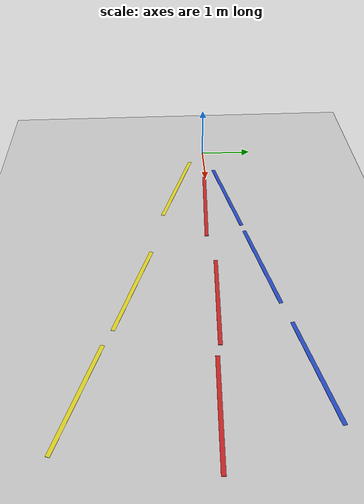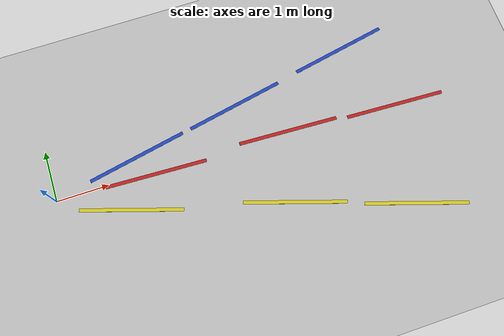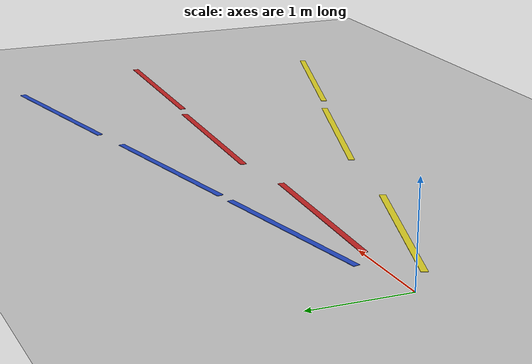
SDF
<sdf version="1.7">
 <world name="racecar_3_line_2">
  <light name="sun" type="directional">
   <pose>0 0 10 0 -0 0</pose>
   <diffuse>0.8 0.8 0.8 1</diffuse>
   <specular>0.2 0.2 0.2 1</specular>
   <attenuation>
    <range>1000</range>
    <constant>0.9</constant>
    <linear>0.01</linear>
    <quadratic>0.001</quadratic>
   </attenuation>
   <direction>-0.5 0.1 -0.9</direction>
   <spot><inner_angle>0</inner_angle><outer_angle>0</outer_angle><falloff>0</falloff></spot>
  </light>
  <model name="ground_plane">
   <static>1</static>
   <link name="link">
    <collision name="collision">
     <geometry><plane><normal>0 0 1</normal><size>100 100</size></plane></geometry>
     <surface><friction><ode><mu>100</mu><mu2>50</mu2></ode></friction></surface>
    </collision>
    <visual name="visual">
     <cast_shadows>0</cast_shadows>
     <geometry><plane><normal>0 0 1</normal><size>100 100</size></plane></geometry>
     <material>
      <script><uri>file://media/materials/scripts/gazebo.material</uri><name>Gazebo/Grey</name></script>
     </material>
    </visual>
   </link>
  </model>
  <gravity>0 0 -9.8</gravity>
  <magnetic_field>6e-06 2.3e-05 -4.2e-05</magnetic_field>
  <atmosphere type="adiabatic"/>
  <physics type="ode">
   <max_step_size>0.001</max_step_size>
   <real_time_factor>1</real_time_factor>
   <real_time_update_rate>1000</real_time_update_rate>
  </physics>
  <scene><ambient>0.4 0.4 0.4 1</ambient><background>0.7 0.7 0.7 1</background><shadows>1</shadows></scene>
  <spherical_coordinates>
   <surface_model>EARTH_WGS84</surface_model>
   <latitude_deg>0</latitude_deg>
   <longitude_deg>0</longitude_deg>
   <elevation>0</elevation>
   <heading_deg>0</heading_deg>
  </spherical_coordinates>
  <model name="straightRoad_v2">
   <link name="link">
    <inertial>
     <mass>0.00065387</mass>
     <inertia>
      <ixx>2.4e-07</ixx>
      <ixy>0</ixy>
      <ixz>0</ixz>
      <iyy>0.00020698</iyy>
      <iyz>0</iyz>
      <izz>0.00020722</izz>
     </inertia>
    </inertial>
    <pose>0.753077 -1.50125 6e-06 0 0 -0.309556</pose>
    <visual name="visual">
     <geometry><box><size>1.94898 0.066283 0.005062</size></box></geometry>
     <material>
      <script><name>Gazebo/Yellow</name><uri>file://media/materials/scripts/gazebo.material</uri></script>
      <shader type="pixel"><normal_map>__default__</normal_map></shader>
      <ambient>1 1 0 1</ambient>
      <diffuse>1 1 0 1</diffuse>
      <emissive>0 0 0 1</emissive>
     </material>
    </visual>
    <collision name="collision">
     <geometry><box><size>1.94898 0.066283 0.005062</size></box></geometry>
     <surface>
      <friction>
       <ode><mu>1</mu><mu2>1</mu2><fdir1>0 0 0</fdir1><slip1>0</slip1><slip2>0</slip2></ode>
       <torsional>
        <coefficient>1</coefficient>
        <patch_radius>0</patch_radius>
        <surface_radius>0</surface_radius>
        <use_patch_radius>1</use_patch_radius>
        <ode><slip>0</slip></ode>
       </torsional>
      </friction>
      <bounce><restitution_coefficient>0</restitution_coefficient><threshold>1e+06</threshold></bounce>
      <contact>
       <collide_without_contact>0</collide_without_contact>
       <collide_without_contact_bitmask>1</collide_without_contact_bitmask>
       <collide_bitmask>1</collide_bitmask>
       <ode>
        <soft_cfm>0</soft_cfm>
        <soft_erp>0.2</soft_erp>
        <kp>1e+13</kp>
        <kd>1</kd>
        <max_vel>0.01</max_vel>
        <min_depth>0</min_depth>
       </ode>
       <bullet>
        <split_impulse>1</split_impulse>
        <split_impulse_penetration_threshold>-0.01</split_impulse_penetration_threshold>
        <soft_cfm>0</soft_cfm>
        <soft_erp>0.2</soft_erp>
        <kp>1e+13</kp>
        <kd>1</kd>
       </bullet>
      </contact>
     </surface>
    </collision>
   </link>
   <link name="link_clone">
    <inertial>
     <mass>0.00065387</mass>
     <inertia>
      <ixx>2.4e-07</ixx>
      <ixy>0</ixy>
      <ixz>0</ixz>
      <iyy>0.00020698</iyy>
      <iyz>0</iyz>
      <izz>0.00020722</izz>
     </inertia>
    </inertial>
    <pose>1.38092 -0.98085 1.6e-05 -1e-05 -1e-06 -0.042499</pose>
    <visual name="visual">
     <geometry><box><size>1.94898 0.066283 0.005062</size></box></geometry>
     <material>
      <script><name>Gazebo/Red</name><uri>file://media/materials/scripts/gazebo.material</uri></script>
      <shader type="pixel"><normal_map>__default__</normal_map></shader>
      <ambient>1 0 0 1</ambient>
      <diffuse>1 0 0 1</diffuse>
      <emissive>1 0 0 1</emissive>
      <specular>1 0 0 1</specular>
     </material>
    </visual>
    <collision name="collision">
     <geometry><box><size>1.94898 0.066283 0.005062</size></box></geometry>
     <surface>
      <friction>
       <ode><mu>1</mu><mu2>1</mu2><fdir1>0 0 0</fdir1><slip1>0</slip1><slip2>0</slip2></ode>
       <torsional>
        <coefficient>1</coefficient>
        <patch_radius>0</patch_radius>
        <surface_radius>0</surface_radius>
        <use_patch_radius>1</use_patch_radius>
        <ode><slip>0</slip></ode>
       </torsional>
      </friction>
      <bounce><restitution_coefficient>0</restitution_coefficient><threshold>1e+06</threshold></bounce>
      <contact>
       <collide_without_contact>0</collide_without_contact>
       <collide_without_contact_bitmask>1</collide_without_contact_bitmask>
       <collide_bitmask>1</collide_bitmask>
       <ode>
        <soft_cfm>0</soft_cfm>
        <soft_erp>0.2</soft_erp>
        <kp>1e+13</kp>
        <kd>1</kd>
        <max_vel>0.01</max_vel>
        <min_depth>0</min_depth>
       </ode>
       <bullet>
        <split_impulse>1</split_impulse>
        <split_impulse_penetration_threshold>-0.01</split_impulse_penetration_threshold>
        <soft_cfm>0</soft_cfm>
        <soft_erp>0.2</soft_erp>
        <kp>1e+13</kp>
        <kd>1</kd>
       </bullet>
      </contact>
     </surface>
    </collision>
   </link>
   <link name="link_clone_0">
    <inertial>
     <mass>0.00065387</mass>
     <inertia>
      <ixx>2.4e-07</ixx>
      <ixy>0</ixy>
      <ixz>0</ixz>
      <iyy>0.00020698</iyy>
      <iyz>0</iyz>
      <izz>0.00020722</izz>
     </inertia>
    </inertial>
    <pose>3.68808 -2.31402 2.9e-05 -1e-05 -3e-06 -0.309556</pose>
    <visual name="visual">
     <geometry><box><size>1.94898 0.066283 0.005062</size></box></geometry>
     <material>
      <script><name>Gazebo/Yellow</name><uri>file://media/materials/scripts/gazebo.material</uri></script>
      <shader type="pixel"><normal_map>__default__</normal_map></shader>
      <ambient>1 1 0 1</ambient>
      <diffuse>1 1 0 1</diffuse>
      <emissive>0 0 0 1</emissive>
     </material>
    </visual>
    <collision name="collision">
     <geometry><box><size>1.94898 0.066283 0.005062</size></box></geometry>
     <surface>
      <friction>
       <ode><mu>1</mu><mu2>1</mu2><fdir1>0 0 0</fdir1><slip1>0</slip1><slip2>0</slip2></ode>
       <torsional>
        <coefficient>1</coefficient>
        <patch_radius>0</patch_radius>
        <surface_radius>0</surface_radius>
        <use_patch_radius>1</use_patch_radius>
        <ode><slip>0</slip></ode>
       </torsional>
      </friction>
      <bounce><restitution_coefficient>0</restitution_coefficient><threshold>1e+06</threshold></bounce>
      <contact>
       <collide_without_contact>0</collide_without_contact>
       <collide_without_contact_bitmask>1</collide_without_contact_bitmask>
       <collide_bitmask>1</collide_bitmask>
       <ode>
        <soft_cfm>0</soft_cfm>
        <soft_erp>0.2</soft_erp>
        <kp>1e+13</kp>
        <kd>1</kd>
        <max_vel>0.01</max_vel>
        <min_depth>0</min_depth>
       </ode>
       <bullet>
        <split_impulse>1</split_impulse>
        <split_impulse_penetration_threshold>-0.01</split_impulse_penetration_threshold>
        <soft_cfm>0</soft_cfm>
        <soft_erp>0.2</soft_erp>
        <kp>1e+13</kp>
        <kd>1</kd>
       </bullet>
      </contact>
     </surface>
    </collision>
   </link>
   <link name="link_clone_1">
    <inertial>
     <mass>0.00065387</mass>
     <inertia>
      <ixx>2.4e-07</ixx>
      <ixy>0</ixy>
      <ixz>0</ixz>
      <iyy>0.00020698</iyy>
      <iyz>0</iyz>
      <izz>0.00020722</izz>
     </inertia>
    </inertial>
    <pose>5.83844 -3.04214 3.7e-05 -1e-05 -3e-06 -0.309556</pose>
    <visual name="visual">
     <geometry><box><size>1.94898 0.066283 0.005062</size></box></geometry>
     <material>
      <script><name>Gazebo/Yellow</name><uri>file://media/materials/scripts/gazebo.material</uri></script>
      <shader type="pixel"><normal_map>__default__</normal_map></shader>
      <ambient>1 1 0 1</ambient>
      <diffuse>1 1 0 1</diffuse>
      <emissive>0 0 0 1</emissive>
     </material>
    </visual>
    <collision name="collision">
     <geometry><box><size>1.94898 0.066283 0.005062</size></box></geometry>
     <surface>
      <friction>
       <ode><mu>1</mu><mu2>1</mu2><fdir1>0 0 0</fdir1><slip1>0</slip1><slip2>0</slip2></ode>
       <torsional>
        <coefficient>1</coefficient>
        <patch_radius>0</patch_radius>
        <surface_radius>0</surface_radius>
        <use_patch_radius>1</use_patch_radius>
        <ode><slip>0</slip></ode>
       </torsional>
      </friction>
      <bounce><restitution_coefficient>0</restitution_coefficient><threshold>1e+06</threshold></bounce>
      <contact>
       <collide_without_contact>0</collide_without_contact>
       <collide_without_contact_bitmask>1</collide_without_contact_bitmask>
       <collide_bitmask>1</collide_bitmask>
       <ode>
        <soft_cfm>0</soft_cfm>
        <soft_erp>0.2</soft_erp>
        <kp>1e+13</kp>
        <kd>1</kd>
        <max_vel>0.01</max_vel>
        <min_depth>0</min_depth>
       </ode>
       <bullet>
        <split_impulse>1</split_impulse>
        <split_impulse_penetration_threshold>-0.01</split_impulse_penetration_threshold>
        <soft_cfm>0</soft_cfm>
        <soft_erp>0.2</soft_erp>
        <kp>1e+13</kp>
        <kd>1</kd>
       </bullet>
      </contact>
     </surface>
    </collision>
   </link>
   <link name="link_clone_clone">
    <inertial>
     <mass>0.00065387</mass>
     <inertia>
      <ixx>2.4e-07</ixx>
      <ixy>0</ixy>
      <ixz>0</ixz>
      <iyy>0.00020698</iyy>
      <iyz>0</iyz>
      <izz>0.00020722</izz>
     </inertia>
    </inertial>
    <pose>1.11861 -0.548944 1.9e-05 -2e-05 3e-06 0.195199</pose>
    <visual name="visual">
     <geometry><box><size>1.94898 0.066283 0.005062</size></box></geometry>
     <material>
      <script><name>Gazebo/Blue</name><uri>file://media/materials/scripts/gazebo.material</uri></script>
      <shader type="pixel"><normal_map>__default__</normal_map></shader>
      <ambient>0 0 1 1</ambient>
      <diffuse>0 0 1 1</diffuse>
      <emissive>0 0 1 1</emissive>
      <specular>0 0 1 1</specular>
     </material>
    </visual>
    <collision name="collision">
     <geometry><box><size>1.94898 0.066283 0.005062</size></box></geometry>
     <surface>
      <friction>
       <ode><mu>1</mu><mu2>1</mu2><fdir1>0 0 0</fdir1><slip1>0</slip1><slip2>0</slip2></ode>
       <torsional>
        <coefficient>1</coefficient>
        <patch_radius>0</patch_radius>
        <surface_radius>0</surface_radius>
        <use_patch_radius>1</use_patch_radius>
        <ode><slip>0</slip></ode>
       </torsional>
      </friction>
      <bounce><restitution_coefficient>0</restitution_coefficient><threshold>1e+06</threshold></bounce>
      <contact>
       <collide_without_contact>0</collide_without_contact>
       <collide_without_contact_bitmask>1</collide_without_contact_bitmask>
       <collide_bitmask>1</collide_bitmask>
       <ode>
        <soft_cfm>0</soft_cfm>
        <soft_erp>0.2</soft_erp>
        <kp>1e+13</kp>
        <kd>1</kd>
        <max_vel>0.01</max_vel>
        <min_depth>0</min_depth>
       </ode>
       <bullet>
        <split_impulse>1</split_impulse>
        <split_impulse_penetration_threshold>-0.01</split_impulse_penetration_threshold>
        <soft_cfm>0</soft_cfm>
        <soft_erp>0.2</soft_erp>
        <kp>1e+13</kp>
        <kd>1</kd>
       </bullet>
      </contact>
     </surface>
    </collision>
   </link>
   <link name="link_clone_clone_0">
    <inertial>
     <mass>0.00065387</mass>
     <inertia>
      <ixx>2.4e-07</ixx>
      <ixy>0</ixy>
      <ixz>0</ixz>
      <iyy>0.00020698</iyy>
      <iyz>0</iyz>
      <izz>0.00020722</izz>
     </inertia>
    </inertial>
    <pose>4.02415 -0.955065 2.4e-05 -2e-05 -1e-06 -0.042499</pose>
    <visual name="visual">
     <geometry><box><size>1.94898 0.066283 0.005062</size></box></geometry>
     <material>
      <script><name>Gazebo/Red</name><uri>file://media/materials/scripts/gazebo.material</uri></script>
      <shader type="pixel"><normal_map>__default__</normal_map></shader>
      <ambient>1 0 0 1</ambient>
      <diffuse>1 0 0 1</diffuse>
      <emissive>1 0 0 1</emissive>
      <specular>1 0 0 1</specular>
     </material>
    </visual>
    <collision name="collision">
     <geometry><box><size>1.94898 0.066283 0.005062</size></box></geometry>
     <surface>
      <friction>
       <ode><mu>1</mu><mu2>1</mu2><fdir1>0 0 0</fdir1><slip1>0</slip1><slip2>0</slip2></ode>
       <torsional>
        <coefficient>1</coefficient>
        <patch_radius>0</patch_radius>
        <surface_radius>0</surface_radius>
        <use_patch_radius>1</use_patch_radius>
        <ode><slip>0</slip></ode>
       </torsional>
      </friction>
      <bounce><restitution_coefficient>0</restitution_coefficient><threshold>1e+06</threshold></bounce>
      <contact>
       <collide_without_contact>0</collide_without_contact>
       <collide_without_contact_bitmask>1</collide_without_contact_bitmask>
       <collide_bitmask>1</collide_bitmask>
       <ode>
        <soft_cfm>0</soft_cfm>
        <soft_erp>0.2</soft_erp>
        <kp>1e+13</kp>
        <kd>1</kd>
        <max_vel>0.01</max_vel>
        <min_depth>0</min_depth>
       </ode>
       <bullet>
        <split_impulse>1</split_impulse>
        <split_impulse_penetration_threshold>-0.01</split_impulse_penetration_threshold>
        <soft_cfm>0</soft_cfm>
        <soft_erp>0.2</soft_erp>
        <kp>1e+13</kp>
        <kd>1</kd>
       </bullet>
      </contact>
     </surface>
    </collision>
   </link>
   <link name="link_clone_clone_1">
    <inertial>
     <mass>0.00065387</mass>
     <inertia>
      <ixx>2.4e-07</ixx>
      <ixy>0</ixy>
      <ixz>0</ixz>
      <iyy>0.00020698</iyy>
      <iyz>0</iyz>
      <izz>0.00020722</izz>
     </inertia>
    </inertial>
    <pose>6.18233 -1.09666 2.5e-05 -2e-05 -1e-06 -0.042499</pose>
    <visual name="visual">
     <geometry><box><size>1.94898 0.066283 0.005062</size></box></geometry>
     <material>
      <script><name>Gazebo/Red</name><uri>file://media/materials/scripts/gazebo.material</uri></script>
      <shader type="pixel"><normal_map>__default__</normal_map></shader>
      <ambient>1 0 0 1</ambient>
      <diffuse>1 0 0 1</diffuse>
      <emissive>1 0 0 1</emissive>
      <specular>1 0 0 1</specular>
     </material>
    </visual>
    <collision name="collision">
     <geometry><box><size>1.94898 0.066283 0.005062</size></box></geometry>
     <surface>
      <friction>
       <ode><mu>1</mu><mu2>1</mu2><fdir1>0 0 0</fdir1><slip1>0</slip1><slip2>0</slip2></ode>
       <torsional>
        <coefficient>1</coefficient>
        <patch_radius>0</patch_radius>
        <surface_radius>0</surface_radius>
        <use_patch_radius>1</use_patch_radius>
        <ode><slip>0</slip></ode>
       </torsional>
      </friction>
      <bounce><restitution_coefficient>0</restitution_coefficient><threshold>1e+06</threshold></bounce>
      <contact>
       <collide_without_contact>0</collide_without_contact>
       <collide_without_contact_bitmask>1</collide_without_contact_bitmask>
       <collide_bitmask>1</collide_bitmask>
       <ode>
        <soft_cfm>0</soft_cfm>
        <soft_erp>0.2</soft_erp>
        <kp>1e+13</kp>
        <kd>1</kd>
        <max_vel>0.01</max_vel>
        <min_depth>0</min_depth>
       </ode>
       <bullet>
        <split_impulse>1</split_impulse>
        <split_impulse_penetration_threshold>-0.01</split_impulse_penetration_threshold>
        <soft_cfm>0</soft_cfm>
        <soft_erp>0.2</soft_erp>
        <kp>1e+13</kp>
        <kd>1</kd>
       </bullet>
      </contact>
     </surface>
    </collision>
   </link>
   <link name="link_clone_clone_clone">
    <inertial>
     <mass>0.00065387</mass>
     <inertia>
      <ixx>2.4e-07</ixx>
      <ixy>0</ixy>
      <ixz>0</ixz>
      <iyy>0.00020698</iyy>
      <iyz>0</iyz>
      <izz>0.00020722</izz>
     </inertia>
    </inertial>
    <pose>3.20268 -0.140819 1.9e-05 -3e-05 5e-06 0.195199</pose>
    <visual name="visual">
     <geometry><box><size>1.94898 0.066283 0.005062</size></box></geometry>
     <material>
      <script><name>Gazebo/Blue</name><uri>file://media/materials/scripts/gazebo.material</uri></script>
      <shader type="pixel"><normal_map>__default__</normal_map></shader>
      <ambient>0 0 1 1</ambient>
      <diffuse>0 0 1 1</diffuse>
      <emissive>0 0 1 1</emissive>
      <specular>0 0 1 1</specular>
     </material>
    </visual>
    <collision name="collision">
     <geometry><box><size>1.94898 0.066283 0.005062</size></box></geometry>
     <surface>
      <friction>
       <ode><mu>1</mu><mu2>1</mu2><fdir1>0 0 0</fdir1><slip1>0</slip1><slip2>0</slip2></ode>
       <torsional>
        <coefficient>1</coefficient>
        <patch_radius>0</patch_radius>
        <surface_radius>0</surface_radius>
        <use_patch_radius>1</use_patch_radius>
        <ode><slip>0</slip></ode>
       </torsional>
      </friction>
      <bounce><restitution_coefficient>0</restitution_coefficient><threshold>1e+06</threshold></bounce>
      <contact>
       <collide_without_contact>0</collide_without_contact>
       <collide_without_contact_bitmask>1</collide_without_contact_bitmask>
       <collide_bitmask>1</collide_bitmask>
       <ode>
        <soft_cfm>0</soft_cfm>
        <soft_erp>0.2</soft_erp>
        <kp>1e+13</kp>
        <kd>1</kd>
        <max_vel>0.01</max_vel>
        <min_depth>0</min_depth>
       </ode>
       <bullet>
        <split_impulse>1</split_impulse>
        <split_impulse_penetration_threshold>-0.01</split_impulse_penetration_threshold>
        <soft_cfm>0</soft_cfm>
        <soft_erp>0.2</soft_erp>
        <kp>1e+13</kp>
        <kd>1</kd>
       </bullet>
      </contact>
     </surface>
    </collision>
   </link>
   <link name="link_clone_clone_clone_0">
    <inertial>
     <mass>0.00065387</mass>
     <inertia>
      <ixx>2.4e-07</ixx>
      <ixy>0</ixy>
      <ixz>0</ixz>
      <iyy>0.00020698</iyy>
      <iyz>0</iyz>
      <izz>0.00020722</izz>
     </inertia>
    </inertial>
    <pose>5.54502 0.341929 1.3e-05 -3e-05 5e-06 0.195199</pose>
    <visual name="visual">
     <geometry><box><size>1.94898 0.066283 0.005062</size></box></geometry>
     <material>
      <script><name>Gazebo/Blue</name><uri>file://media/materials/scripts/gazebo.material</uri></script>
      <shader type="pixel"><normal_map>__default__</normal_map></shader>
      <ambient>0 0 1 1</ambient>
      <diffuse>0 0 1 1</diffuse>
      <emissive>0 0 1 1</emissive>
      <specular>0 0 1 1</specular>
     </material>
    </visual>
    <collision name="collision">
     <geometry><box><size>1.94898 0.066283 0.005062</size></box></geometry>
     <surface>
      <friction>
       <ode><mu>1</mu><mu2>1</mu2><fdir1>0 0 0</fdir1><slip1>0</slip1><slip2>0</slip2></ode>
       <torsional>
        <coefficient>1</coefficient>
        <patch_radius>0</patch_radius>
        <surface_radius>0</surface_radius>
        <use_patch_radius>1</use_patch_radius>
        <ode><slip>0</slip></ode>
       </torsional>
      </friction>
      <bounce><restitution_coefficient>0</restitution_coefficient><threshold>1e+06</threshold></bounce>
      <contact>
       <collide_without_contact>0</collide_without_contact>
       <collide_without_contact_bitmask>1</collide_without_contact_bitmask>
       <collide_bitmask>1</collide_bitmask>
       <ode>
        <soft_cfm>0</soft_cfm>
        <soft_erp>0.2</soft_erp>
        <kp>1e+13</kp>
        <kd>1</kd>
        <max_vel>0.01</max_vel>
        <min_depth>0</min_depth>
       </ode>
       <bullet>
        <split_impulse>1</split_impulse>
        <split_impulse_penetration_threshold>-0.01</split_impulse_penetration_threshold>
        <soft_cfm>0</soft_cfm>
        <soft_erp>0.2</soft_erp>
        <kp>1e+13</kp>
        <kd>1</kd>
       </bullet>
      </contact>
     </surface>
    </collision>
   </link>
   <static>1</static>
   <pose>0.52678 0.915402 3e-06 1e-05 -0 0</pose>
  </model>
 </world>
</sdf>
